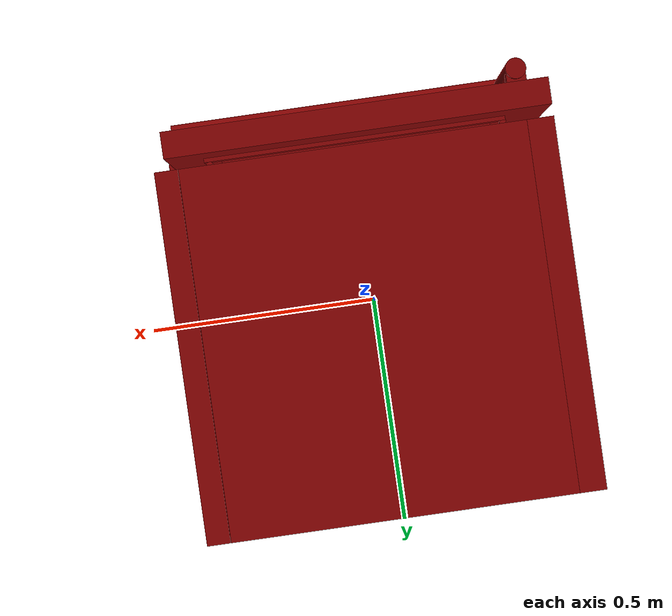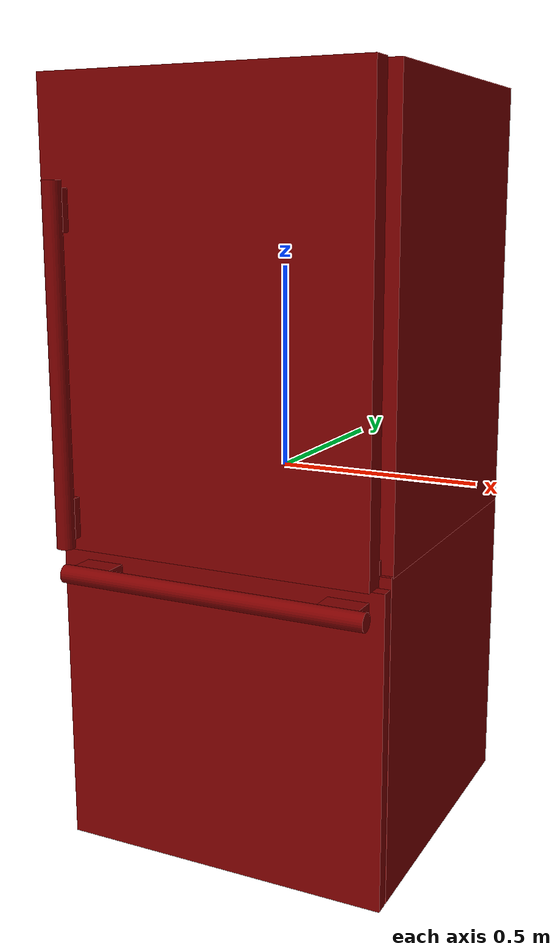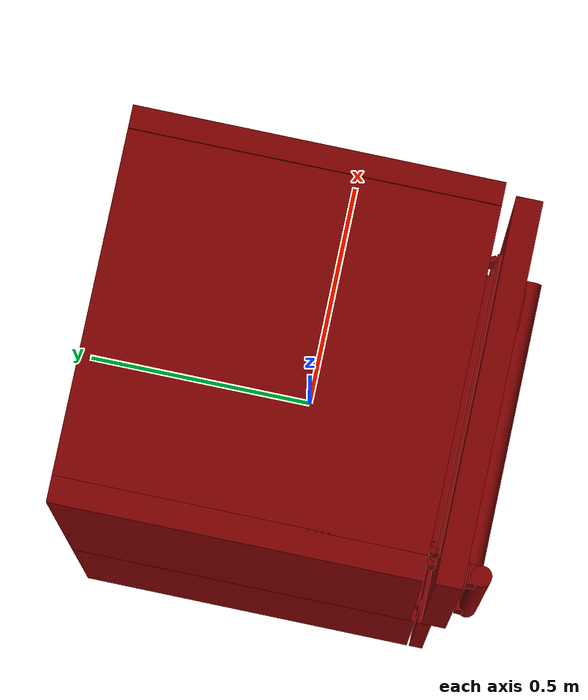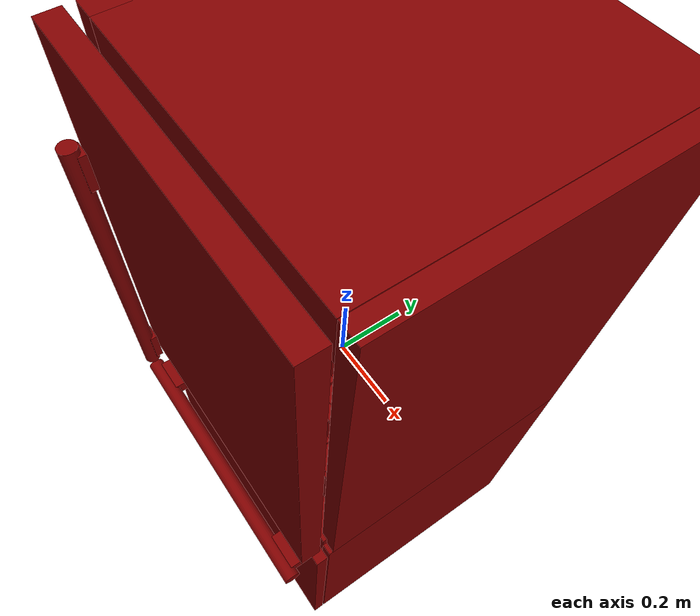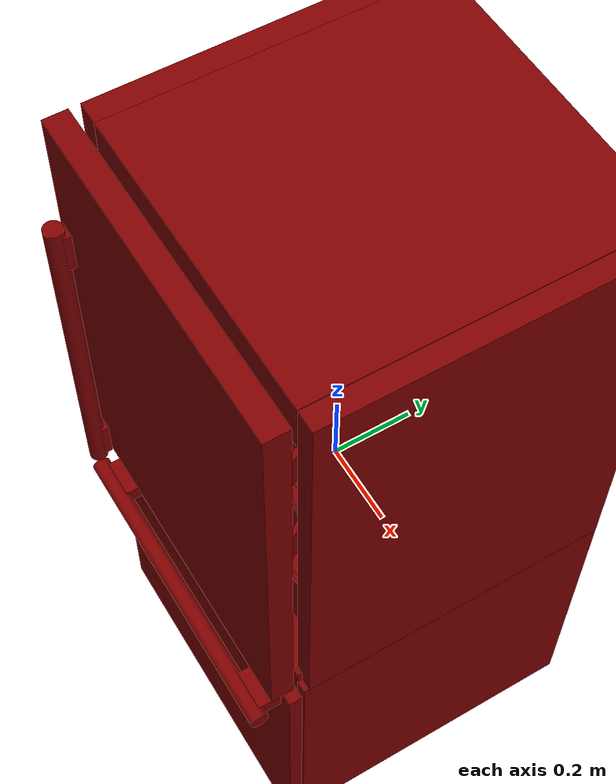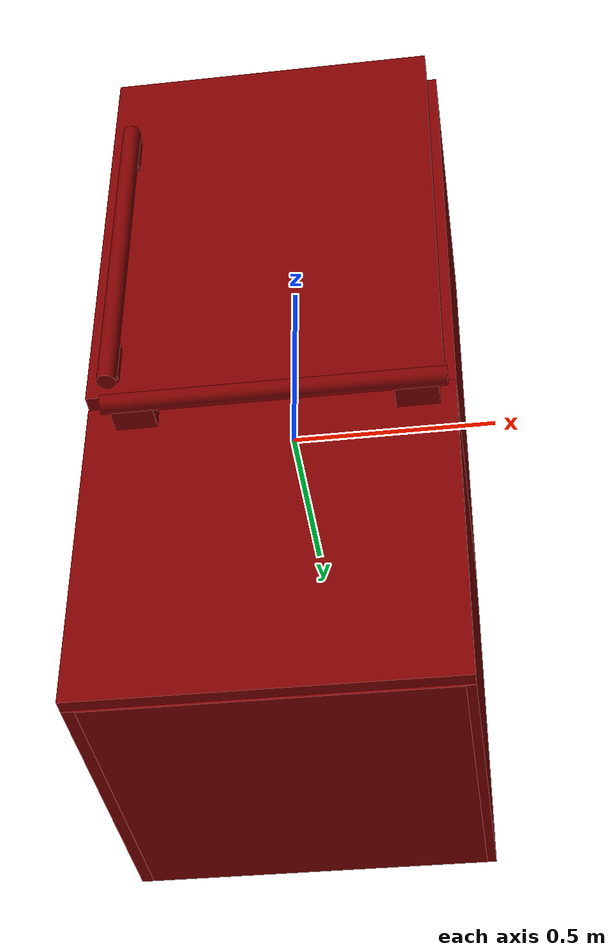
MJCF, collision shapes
<mujoco model="model">
  <compiler angle="radian"/>
  <asset>
    <mesh file="visuals/Body001.obj" name="Body001_vis"/>
    <mesh file="visuals/Body002_Clear.obj" name="Body002_Clear_vis"/>
    <mesh file="visuals/Door001.obj" name="Door001_vis"/>
    <mesh file="visuals/Door001_Clear.obj" name="Door001_Clear_vis"/>
    <mesh file="visuals/Drawer001.obj" name="Drawer001_vis"/>
    <mesh file="visuals/Drawer002.obj" name="Drawer002_vis"/>
    <texture file="visuals/T_BC001.png" name="Body001_material" type="2d"/>
    <material name="Body001_material" rgba="1 1 1 1.0" texture="Body001_material" shininess="0.141421377658844" specular="1"/>
    <texture file="visuals/T_BC001.png" name="Body002_Clear_material" type="2d"/>
    <material name="Body002_Clear_material" rgba="1 1 1 0.3850574493408203" texture="Body002_Clear_material" shininess="0.5" specular="1"/>
    <texture file="visuals/T_BC001.png" name="Door001_material" type="2d"/>
    <material name="Door001_material" rgba="1 1 1 1.0" texture="Door001_material" shininess="0.141421377658844" specular="1"/>
    <texture file="visuals/T_BC001.png" name="Door001_Clear_material" type="2d"/>
    <material name="Door001_Clear_material" rgba="1 1 1 0.3850574493408203" texture="Door001_Clear_material" shininess="0.5" specular="1"/>
    <texture file="visuals/T_BC001.png" name="Drawer001_material" type="2d"/>
    <material name="Drawer001_material" rgba="1 1 1 1.0" texture="Drawer001_material" shininess="0.141421377658844" specular="1"/>
    <texture file="visuals/T_BC001.png" name="Drawer002_material" type="2d"/>
    <material name="Drawer002_material" rgba="1 1 1 1.0" texture="Drawer002_material" shininess="0.141421377658844" specular="1"/>
  </asset>
  <default>
    <default class="visual">
      <geom conaffinity="0" contype="0" group="1" type="mesh"/>
    </default>
    <default class="collision">
      <geom group="0" rgba="0.5 0 0 0.5"/>
    </default>
    <default class="spawn">
      <geom group="0" rgba="1 1 1 0.5" contype="0" conaffinity="0"/>
      <site group="0" rgba="1 1 1 0.5"/>
    </default>
    <default class="region">
      <geom group="1" conaffinity="0" contype="0" rgba="0 1 0 0"/>
    </default>
  </default>
  <worldbody>
    <body>
      <body name="object">
        <geom mesh="Body001_vis" type="mesh" solimp="0.998 0.998 0.001" solref="0.001 1" density="100" friction="0.95 0.3 0.1" class="visual" material="Body001_material"/>
        <geom class="collision" type="box" pos="-0.391206 0.069679 0.393059" size="0.0284603089094162 0.39184296131134033 0.5434035062789917" quat="1.0 0.0 0.0 0.0"/>
        <geom class="collision" type="box" pos="0.395043 0.069679 0.393059" size="0.02462315931916237 0.39184296131134033 0.5434035062789917" quat="1.0 0.0 0.0 0.0"/>
        <geom class="collision" type="box" pos="0.001944 0.069679 0.877395" size="0.3672516942024231 0.39184296131134033 0.05906710773706436" quat="1.0 0.0 0.0 0.0"/>
        <geom class="collision" type="box" pos="0.001715 0.060536 -0.191235" size="0.3891288936138153 0.3936358690261841 0.08001299947500229" quat="1.0 0.0 0.0 0.0"/>
        <geom class="collision" type="box" pos="-0.405262 0.064211 -0.540953" size="0.014404229819774628 0.39731115102767944 0.3955075442790985" quat="1.0 0.0 0.0 0.0"/>
        <geom class="collision" type="box" pos="0.404734 0.064211 -0.540953" size="0.01493198424577713 0.39731115102767944 0.3955075442790985" quat="1.0 0.0 0.0 0.0"/>
        <geom class="collision" type="box" pos="0.003355 0.065708 -0.900352" size="0.3953417241573334 0.39581403136253357 0.03610903024673462" quat="1.0 0.0 0.0 0.0"/>
        <geom class="collision" type="box" pos="0.003355 0.406956 -0.018448" size="0.3953417241573334 0.05456589534878731 0.8492542505264282" quat="1.0 0.0 0.0 0.0"/>
        <geom class="collision" type="box" pos="0.369152 0.075120 0.403762" size="0.03209497034549713 0.3709336817264557 0.5131335258483887" quat="1.0 0.0 0.0 0.0"/>
        <geom class="collision" type="box" pos="-0.368266 0.073087 0.405002" size="0.03209497034549713 0.37296679615974426 0.5118939280509949" quat="1.0 0.0 0.0 0.0"/>
        <geom class="collision" type="box" pos="0.003355 0.314356 0.802648" size="0.3953417241573334 0.05392025411128998 0.07090720534324646" quat="1.0 0.0 0.0 0.0"/>
        <geom class="collision" type="box" pos="0.000676 -0.286168 0.512828" size="0.33716708421707153 0.010380997322499752 0.005431113764643669" quat="1.0 0.0 0.0 0.0"/>
        <geom class="collision" type="box" pos="0.000676 -0.286168 0.196451" size="0.33716708421707153 0.010380997322499752 0.005431113764643669" quat="1.0 0.0 0.0 0.0"/>
        <geom class="collision" type="box" pos="-0.329790 0.040501 0.185588" size="0.006701474077999592 0.3169732689857483 0.009466687217354774" quat="1.0 0.0 0.0 0.0"/>
        <geom class="collision" type="box" pos="-0.329790 0.040501 0.498729" size="0.006701474077999592 0.3169732689857483 0.009466687217354774" quat="1.0 0.0 0.0 0.0"/>
        <geom class="collision" type="box" pos="0.330310 0.040501 0.498729" size="0.006701474077999592 0.3169732689857483 0.009466687217354774" quat="1.0 0.0 0.0 0.0"/>
        <geom class="collision" type="box" pos="0.330310 0.040501 0.185588" size="0.006701474077999592 0.3169732689857483 0.009466687217354774" quat="1.0 0.0 0.0 0.0"/>
        <body name="Body002_Clear">
          <geom mesh="Body002_Clear_vis" type="mesh" solimp="0.998 0.998 0.001" solref="0.001 1" density="100" friction="0.95 0.3 0.1" class="visual" material="Body002_Clear_material"/>
          <geom class="collision" type="box" pos="0.000996 0.029161 0.514178" size="0.3379932940006256 0.3175668716430664 0.003920670133084059" quat="1.0 0.0 0.0 0.0"/>
          <geom class="collision" type="box" pos="0.000935 0.028838 0.197311" size="0.3380873501300812 0.31790733337402344 0.004801504779607058" quat="1.0 0.0 0.0 0.0"/>
        </body>
        <body name="Door001">
          <joint axis="0.0 0.0 1.0" pos="0.384310 -0.366765 0.412051" limited="true" name="Door001_joint" range="0.0 1.5707963267948966" type="hinge" damping="1" frictionloss="1" armature=".01" stiffness="0.05"/>
          <geom mesh="Door001_vis" type="mesh" solimp="0.998 0.998 0.001" solref="0.001 1" density="100" friction="0.95 0.3 0.1" class="visual" material="Door001_material"/>
          <geom class="collision" type="box" pos="-0.011717 -0.375839 0.386638" size="0.4078591465950012 0.028293631970882416 0.5498242378234863" quat="1.0 0.0 0.0 0.0"/>
          <geom class="collision" type="cylinder" pos="-0.363941 -0.441099 0.275892" size="0.02228538878262043 0.4252544343471527" quat="1.0 0.0 0.0 0.0"/>
          <geom class="collision" type="box" pos="-0.363024 -0.423449 0.635373" size="0.02136850915849209 0.010045445524156094 0.04923227056860924" quat="1.0 0.0 0.0 0.0"/>
          <geom class="collision" type="box" pos="-0.363024 -0.423449 -0.078219" size="0.02136850915849209 0.010045445524156094 0.04923227056860924" quat="1.0 0.0 0.0 0.0"/>
          <body name="Door001_Clear">
            <geom mesh="Door001_Clear_vis" type="mesh" solimp="0.998 0.998 0.001" solref="0.001 1" density="100" friction="0.95 0.3 0.1" class="visual" material="Door001_Clear_material"/>
            <geom class="collision" type="box" pos="-0.006704 -0.294926 0.537382" size="0.2912273705005646 0.046716656535863876 0.004199703224003315" quat="1.0 0.0 0.0 0.0"/>
            <geom class="collision" type="box" pos="-0.017590 -0.244538 0.578444" size="0.27472445368766785 0.004939785692840815 0.043506573885679245" quat="1.0 0.0 0.0 0.0"/>
            <geom class="collision" type="box" pos="-0.306652 -0.295046 0.577546" size="0.006150530185550451 0.048938725143671036 0.044404126703739166" quat="0.9805420637130737 0.0 -0.0 -0.1963091492652893"/>
            <geom class="collision" type="box" pos="-0.004177 -0.343751 0.578444" size="0.32525894045829773 0.004939785692840815 0.043506573885679245" quat="1.0 0.0 0.0 0.0"/>
            <geom class="collision" type="box" pos="0.285978 -0.289812 0.577546" size="0.006150530185550451 0.05485717952251434 0.044404126703739166" quat="0.9704836010932922 0.0 0.0 0.24116700887680054"/>
            <geom class="collision" type="box" pos="0.285978 -0.289812 0.280122" size="0.006150530185550451 0.05485717952251434 0.044404126703739166" quat="0.9704836010932922 0.0 0.0 0.24116700887680054"/>
            <geom class="collision" type="box" pos="-0.306652 -0.295046 0.280122" size="0.006150530185550451 0.048938725143671036 0.044404126703739166" quat="0.9805420637130737 0.0 -0.0 -0.1963091492652893"/>
            <geom class="collision" type="box" pos="-0.004177 -0.343751 0.281019" size="0.32525894045829773 0.004939785692840815 0.043506573885679245" quat="1.0 0.0 0.0 0.0"/>
            <geom class="collision" type="box" pos="-0.017590 -0.244538 0.281019" size="0.27472445368766785 0.004939785692840815 0.043506573885679245" quat="1.0 0.0 0.0 0.0"/>
            <geom class="collision" type="box" pos="-0.006704 -0.294926 0.239957" size="0.2912273705005646 0.046716656535863876 0.004199703224003315" quat="1.0 0.0 0.0 0.0"/>
          </body>
        </body>
        <body name="Drawer001">
          <joint axis="0.0 -1.0 0.0" pos="-0.000994 0.028969 0.040191" limited="true" name="Drawer001_joint" range="0.0 0.55" type="slide" damping="1" frictionloss="1" armature=".01" stiffness="0.05"/>
          <geom mesh="Drawer001_vis" type="mesh" solimp="0.998 0.998 0.001" solref="0.001 1" density="100" friction="0.95 0.3 0.1" class="visual" material="Drawer001_material"/>
          <geom class="collision" type="box" pos="0.211240 -0.250217 0.040416" size="0.10585888475179672 0.015160944312810898 0.1473037749528885" quat="1.0 0.0 0.0 0.0"/>
          <geom class="collision" type="box" pos="-0.001141 0.044992 -0.081781" size="0.29972487688064575 0.26998430490493774 0.009474803693592548" quat="1.0 0.0 0.0 0.0"/>
          <geom class="collision" type="box" pos="0.001934 0.317652 0.034916" size="0.29992279410362244 0.005565737374126911 0.12156962603330612" quat="1.0 0.0 0.0 0.0"/>
          <geom class="collision" type="box" pos="-0.307217 0.035298 0.034245" size="0.006515413522720337 0.27182281017303467 0.12089862674474716" quat="1.0 0.0 0.0 0.0"/>
          <geom class="collision" type="box" pos="0.305328 0.035673 0.035380" size="0.006515425629913807 0.27219927310943604 0.1220342218875885" quat="1.0 0.0 0.0 0.0"/>
          <geom class="collision" type="box" pos="-0.183719 -0.250217 0.040416" size="0.1331130415201187 0.015161084942519665 0.1473051905632019" quat="1.0 0.0 0.0 0.0"/>
          <geom class="collision" type="box" pos="0.027388 -0.250217 -0.041457" size="0.07799283415079117 0.015161092393100262 0.06543202698230743" quat="1.0 0.0 0.0 0.0"/>
          <geom class="collision" type="box" pos="0.027388 -0.250217 0.140493" size="0.07799287140369415 0.015161100775003433 0.04722875356674194" quat="1.0 0.0 0.0 0.0"/>
          <geom class="collision" type="box" pos="0.027388 -0.236421 0.058620" size="0.07799290865659714 0.0013647913001477718 0.034644715487957" quat="1.0 0.0 0.0 0.0"/>
          <geom class="collision" type="box" pos="0.027388 -0.262681 0.081716" size="0.07799293100833893 0.0020786344539374113 0.011548284441232681" quat="1.0 0.0 0.0 0.0"/>
        </body>
        <body name="Drawer002">
          <joint axis="0.0 -1.0 0.0" pos="-0.000000 -0.035947 -0.550943" limited="true" name="Drawer002_joint" range="0.0 0.55" type="slide" damping="1" frictionloss="1" armature=".01" stiffness="0.05"/>
          <geom mesh="Drawer002_vis" type="mesh" solimp="0.998 0.998 0.001" solref="0.001 1" density="100" friction="0.95 0.3 0.1" class="visual" material="Drawer002_material"/>
          <geom class="collision" type="box" pos="-0.000398 -0.001822 -0.846978" size="0.3701292872428894 0.34398871660232544 0.012708221562206745" quat="1.0 0.0 0.0 0.0"/>
          <geom class="collision" type="box" pos="-0.000398 0.330881 -0.563703" size="0.3701292872428894 0.011198695749044418 0.28762173652648926" quat="1.0 0.0 0.0 0.0"/>
          <geom class="collision" type="box" pos="0.368208 -0.007724 -0.567023" size="0.012699179351329803 0.34906286001205444 0.28994524478912354" quat="1.0 0.0 0.0 0.0"/>
          <geom class="collision" type="box" pos="-0.366933 -0.006156 -0.567232" size="0.009227771311998367 0.350630521774292 0.29045557975769043" quat="1.0 0.0 0.0 0.0"/>
          <geom class="collision" type="cylinder" pos="0.016905 -0.438837 -0.214995" size="0.022285399958491325 0.3874594271183014" quat="0.7071068286895752 -0.0 0.7071067690849304 0.0"/>
          <geom class="collision" type="box" pos="0.000065 -0.355104 -0.553427" size="0.4195992648601532 0.01631592959165573 0.3830341398715973" quat="1.0 0.0 0.0 0.0"/>
          <geom class="collision" type="box" pos="-0.301734 -0.402216 -0.215956" size="0.048443470150232315 0.028894582763314247 0.0207974836230278" quat="1.0 0.0 0.0 0.0"/>
          <geom class="collision" type="box" pos="0.334264 -0.401904 -0.216333" size="0.049024518579244614 0.029207300394773483 0.021175265312194824" quat="1.0 0.0 0.0 0.0"/>
        </body>
        <geom class="region" name="reg_main" type="box" pos="0.0 0.029175499999999993 -7.499999999993623e-06" size="0.419666 0.43234649999999997 0.9364535"/>
      </body>
    </body>
  </worldbody>
  <actuator>
    <motor name="Door001_joint_actuator" joint="Door001_joint" gear="50"/>
    <motor name="Drawer001_joint_actuator" joint="Drawer001_joint" gear="50"/>
    <motor name="Drawer002_joint_actuator" joint="Drawer002_joint" gear="50"/>
  </actuator>
</mujoco>
